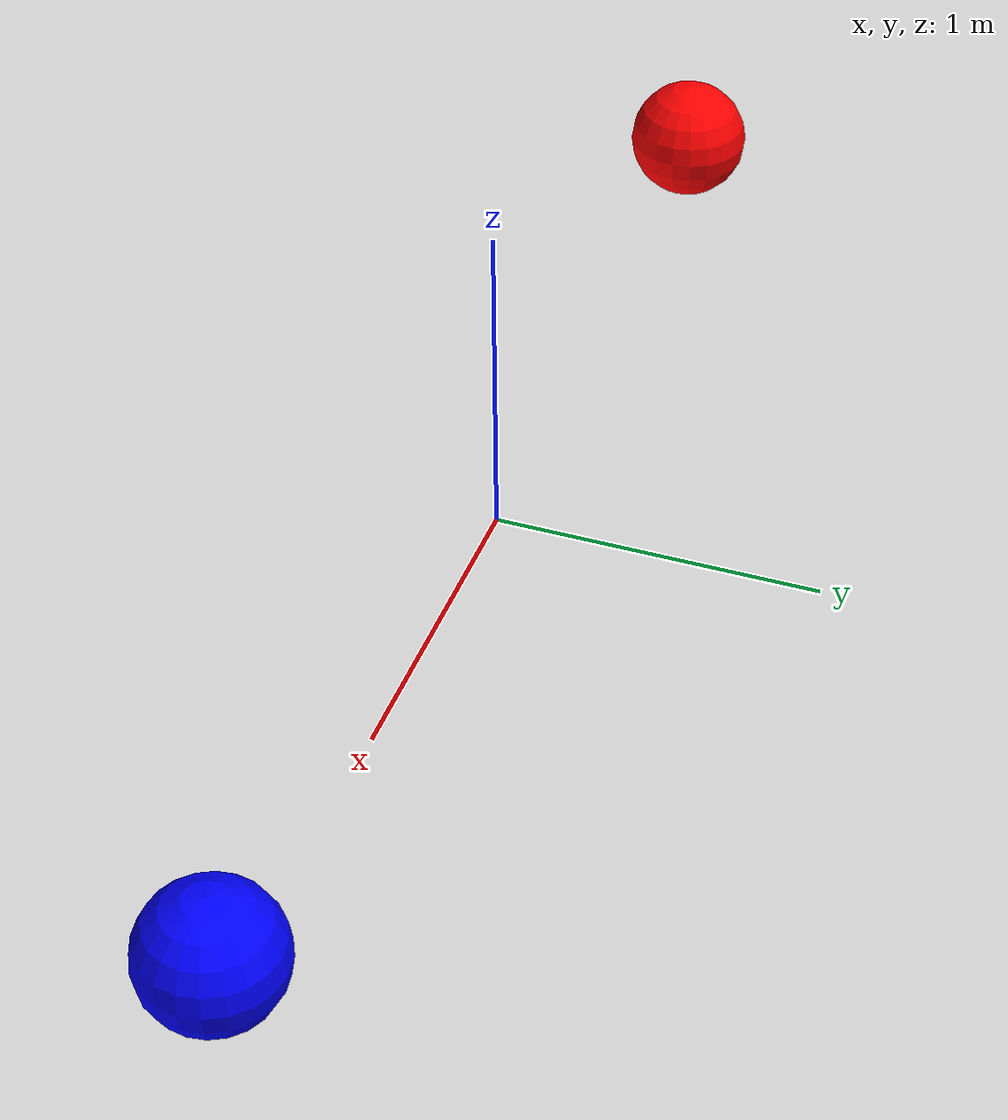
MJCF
<mujoco>
  <option gravity="0 0 -9.81"/>
  <worldbody>
    <body name="object_1" pos="-2 0 0.2">
      <geom type="sphere" size="0.2" density="1" rgba="1 0 0 1"/>
      <joint name="object_1_joint" type="free"/>
    </body>
    <body name="object_2" pos="2 0 0.2">
      <geom type="sphere" size="0.2" density="1" rgba="0 0 1 1"/>
      <joint name="object_2_joint" type="free"/>
    </body>
  </worldbody>
</mujoco>
